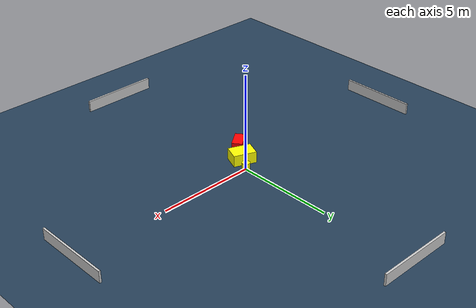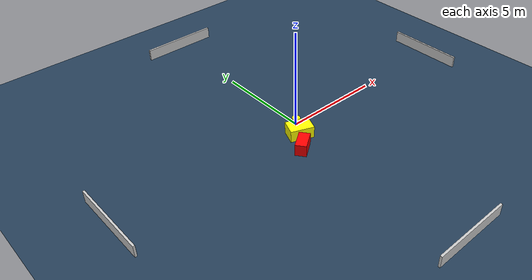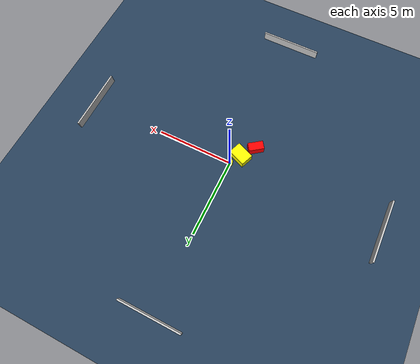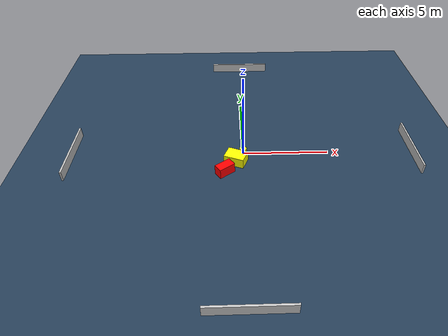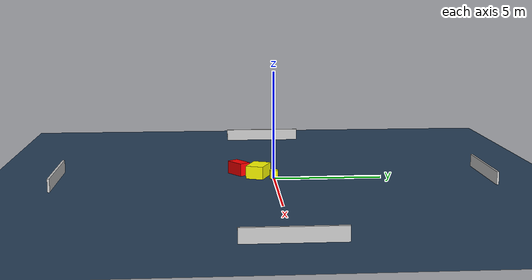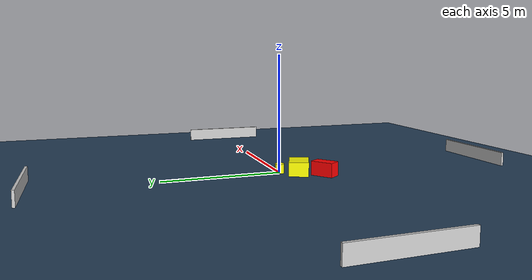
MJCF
<?xml version="1.0" ?>
<mujoco model="generated_environment">
  <option timestep="0.01" integrator="RK4" cone="elliptic"/>
  <default>
    <geom density="1"/>
  </default>
  <asset>
    <texture builtin="gradient" height="3072" name="skybox" rgb1="0.3 0.5 0.7" rgb2="0 0 0" type="skybox" width="512"/>
    <texture builtin="checker" height="300" name="groundplane" rgb1="0.2 0.3 0.4" rgb2="0.1 0.2 0.3" type="2d" width="300"/>
    <material name="groundplane" reflectance="0.2" texrepeat="5 5" texture="groundplane"/>
  </asset>
  <worldbody>
    <light dir="0 0 -1" directional="true" pos="0 0 1.5"/>
    <geom condim="3" friction="0.5 0.005 0.001" material="groundplane" name="floor" pos="0 0 0" size="0 0 0.05" type="plane"/>
    <body name="walls">
      <geom name="wall_1" condim="4" pos="-10.0 0.0 0.3" rgba="0.800000011920929 0.800000011920929 0.800000011920929 1.0" size="0.05 2.0 0.3" type="box"/>
      <geom name="wall_2" condim="4" pos="10.0 0.0 0.3" rgba="0.800000011920929 0.800000011920929 0.800000011920929 1.0" size="0.05 2.0 0.3" type="box"/>
      <geom name="wall_3" condim="4" pos="0.0 -10.0 0.3" rgba="0.800000011920929 0.800000011920929 0.800000011920929 1.0" size="2.0 0.05 0.3" type="box"/>
      <geom name="wall_4" condim="4" pos="0.0 10.0 0.3" rgba="0.800000011920929 0.800000011920929 0.800000011920929 1.0" size="2.0 0.05 0.3" type="box"/>
    </body>
    <body name="robot">
      <joint name="joint_x" type="slide" pos="0 0 0" axis="1 0 0"/>
      <joint name="joint_y" type="slide" pos="0 0 0" axis="0 1 0"/>
      <geom name="robot" type="cylinder" pos="0.0 0.0 0.2" size="0.2 0.2 0.0" mass="5.0" friction="1.0 0.005 0.0001" condim="4" rgba="1.0 1.0 0.0 1.0"/>
    </body>
    <body name="obstacle_1_movable">
      <geom name="obstacle_1_movable" condim="4" pos="-0.4304171538828913 -0.7119311561122731 0.3" euler="0 0 338.09644838631505" friction="0.0 0.005 0.001" rgba="1.0 1.0 0.0 1.0" size="0.5877847516573336 0.41400617804650836 0.3" type="box" mass="0.1"/>
      <joint type="free"/>
    </body>
    <body name="obstacle_2_static">
      <geom name="obstacle_2_static" condim="4" pos="-1.0663423765377953 -1.6121800285413175 0.3" euler="0 0 215.9849747462136" friction="0.0 0.005 0.001" rgba="1.0 0.0 0.0 1.0" size="0.49240849860268526 0.2713627533219679 0.3" type="box"/>
    </body>
  </worldbody>
  <actuator>
    <motor name="actuator_x" joint="joint_x" gear="1" ctrlrange="-1 1"/>
    <motor name="actuator_y" joint="joint_y" gear="1" ctrlrange="-1 1"/>
  </actuator>
</mujoco>
